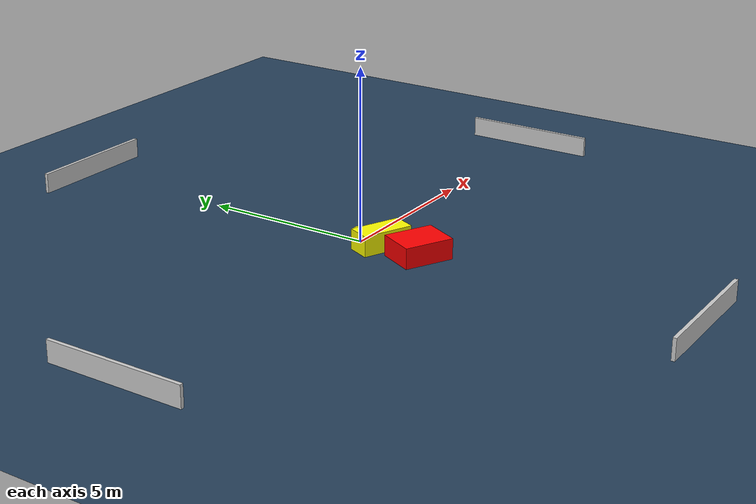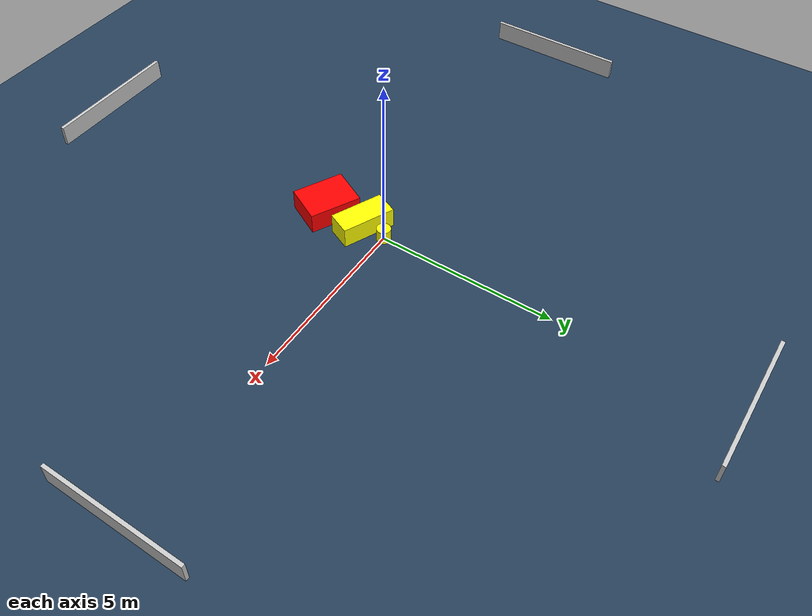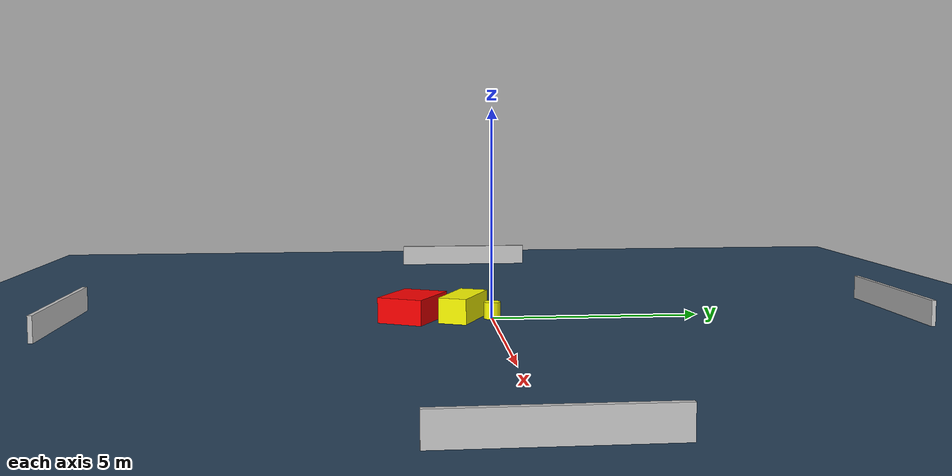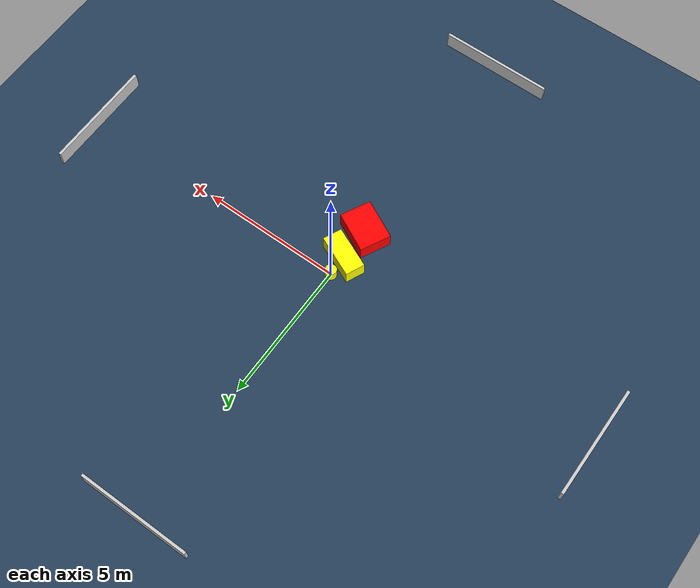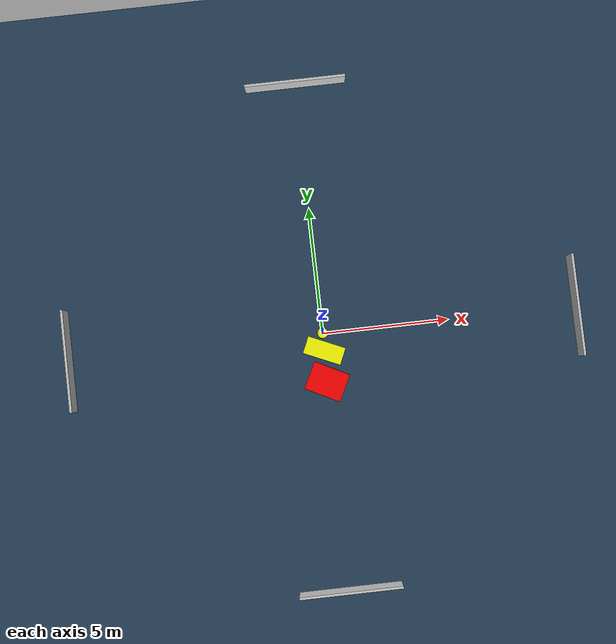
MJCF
<?xml version="1.0" ?>
<mujoco model="generated_environment">
  <option timestep="0.01" integrator="RK4" cone="elliptic"/>
  <default>
    <geom density="1"/>
  </default>
  <asset>
    <texture builtin="gradient" height="3072" name="skybox" rgb1="0.3 0.5 0.7" rgb2="0 0 0" type="skybox" width="512"/>
    <texture builtin="checker" height="300" name="groundplane" rgb1="0.2 0.3 0.4" rgb2="0.1 0.2 0.3" type="2d" width="300"/>
    <material name="groundplane" reflectance="0.2" texrepeat="5 5" texture="groundplane"/>
  </asset>
  <worldbody>
    <light dir="0 0 -1" directional="true" pos="0 0 1.5"/>
    <geom condim="3" friction="0.5 0.005 0.001" material="groundplane" name="floor" pos="0 0 0" size="0 0 0.05" type="plane"/>
    <body name="walls">
      <geom name="wall_1" condim="4" pos="-10.0 0.0 0.3" rgba="0.800000011920929 0.800000011920929 0.800000011920929 1.0" size="0.05 2.0 0.3" type="box"/>
      <geom name="wall_2" condim="4" pos="10.0 0.0 0.3" rgba="0.800000011920929 0.800000011920929 0.800000011920929 1.0" size="0.05 2.0 0.3" type="box"/>
      <geom name="wall_3" condim="4" pos="0.0 -10.0 0.3" rgba="0.800000011920929 0.800000011920929 0.800000011920929 1.0" size="2.0 0.05 0.3" type="box"/>
      <geom name="wall_4" condim="4" pos="0.0 10.0 0.3" rgba="0.800000011920929 0.800000011920929 0.800000011920929 1.0" size="2.0 0.05 0.3" type="box"/>
    </body>
    <body name="robot">
      <joint name="joint_x" type="slide" pos="0 0 0" axis="1 0 0"/>
      <joint name="joint_y" type="slide" pos="0 0 0" axis="0 1 0"/>
      <geom name="robot" type="cylinder" pos="0.0 0.0 0.2" size="0.2 0.2 0.0" mass="5.0" friction="1.0 0.005 0.0001" condim="4" rgba="1.0 1.0 0.0 1.0"/>
    </body>
    <body name="obstacle_1_movable">
      <geom name="obstacle_1_movable" condim="4" pos="-0.013116516328954346 -0.6910162976657285 0.3" euler="0 0 65.99754166344216" friction="0.0 0.005 0.001" rgba="1.0 1.0 0.0 1.0" size="0.34434585893110026 0.7584474174383196 0.3" type="box" mass="0.1"/>
      <joint type="free"/>
    </body>
    <body name="obstacle_2_static">
      <geom name="obstacle_2_static" condim="4" pos="-0.03391050504073428 -1.8963541273857278 0.3" euler="0 0 153.135681585221" friction="0.0 0.005 0.001" rgba="1.0 0.0 0.0 1.0" size="0.731425106293873 0.5590332658208468 0.3" type="box"/>
    </body>
  </worldbody>
  <actuator>
    <motor name="actuator_x" joint="joint_x" gear="1" ctrlrange="-1 1"/>
    <motor name="actuator_y" joint="joint_y" gear="1" ctrlrange="-1 1"/>
  </actuator>
</mujoco>
